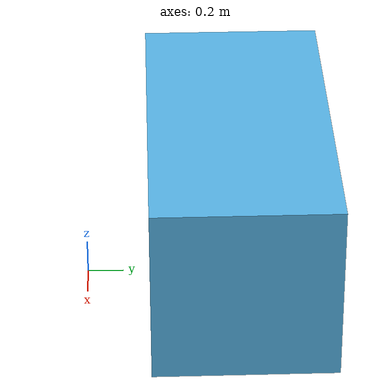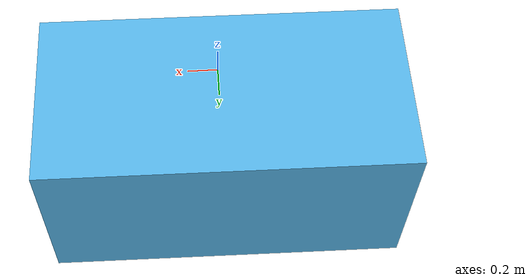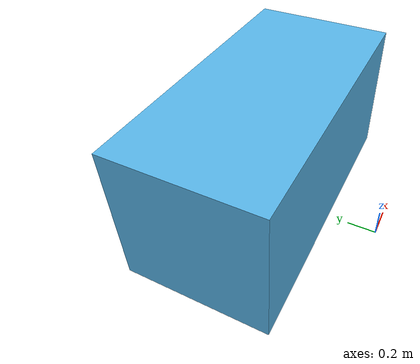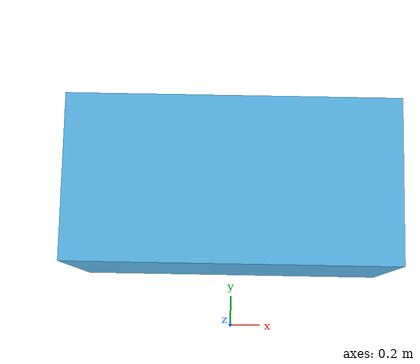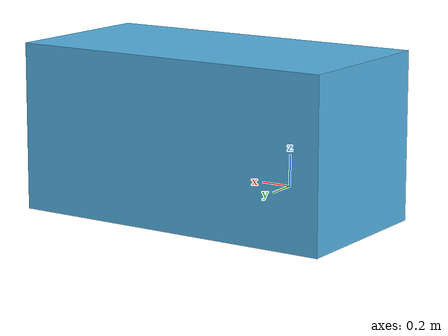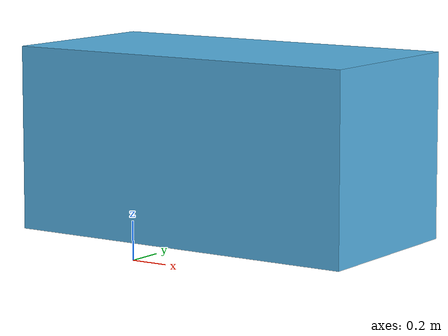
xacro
<?xml version="1.0"?>
<robot name="ws_box" xmlns:xacro="http://www.ros.org/wiki/xacro">

  <!-- utils /-->
  <xacro:include filename="$(find lwr_description)/model/utils.xacro"/>

  <!-- properties /-->
  <xacro:property name="length" value="2"/>
  <xacro:property name="width" value="1"/>
  <xacro:property name="height" value="1"/>
  <xacro:property name="y0" value="0.85"/>

  <!-- URDF model /-->
  <xacro:macro name="ws_box">

    <!-- Workspace box -->
    <link name="ws_box">
      <collision>
	<origin xyz="0 ${y0} ${height/2}" rpy="0 0 0"/>
	<geometry>
	  <box size="${length} ${width} ${height}"/>
	</geometry>
      </collision>

      <visual>
	<origin xyz="0 ${y0} ${height/2}" rpy="0 0 0"/>
	<geometry>
          <box size="${length} ${width} ${height}"/>
	</geometry>
      </visual>

      <inertial>
	<origin xyz="0 ${y0} ${height/2}" rpy="0 0 0"/>
	<mass value="10000"/>
	<cuboid_inertia_def length="${length}" width="${width}" height="${height}" mass="1000"/>
      </inertial>
    </link>

  </xacro:macro>

  <link name="world" />

  <joint name="ws_joint"  type="fixed">
    <parent link="world"/>
    <child link="ws_box"/>
  </joint>

  <!-- using the models -->
  <xacro:ws_box/>

</robot>
